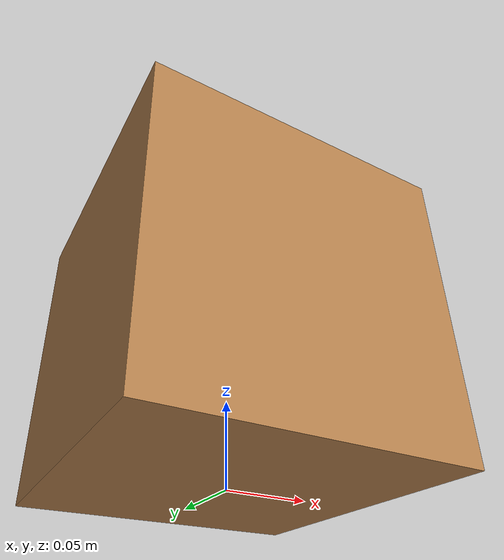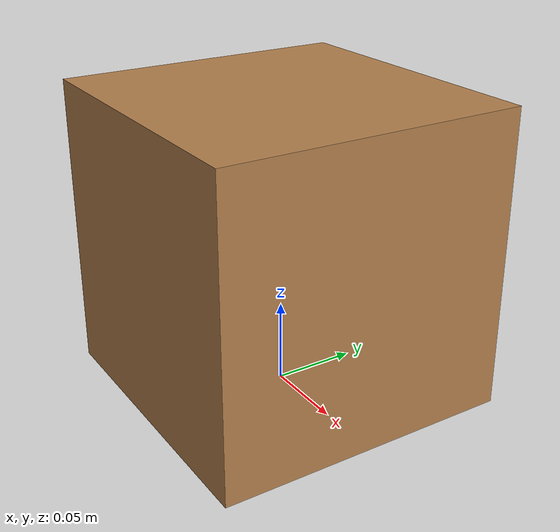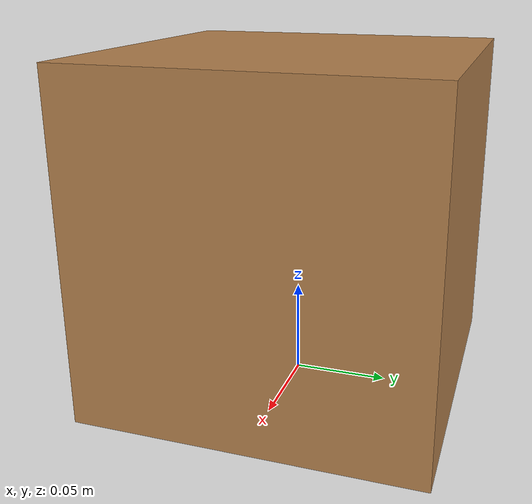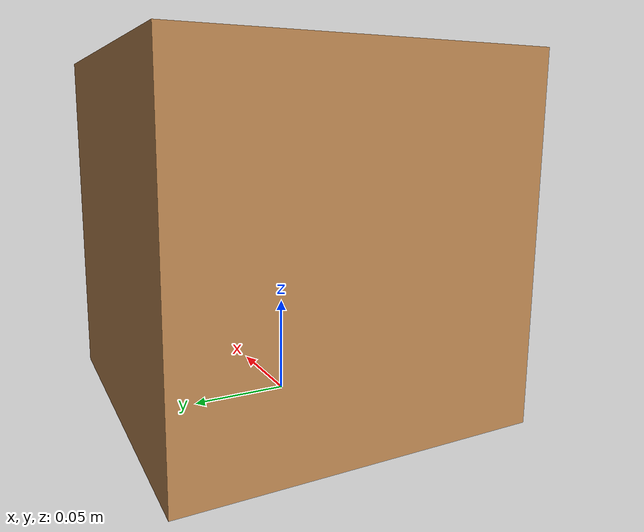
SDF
<?xml version="1.0" ?>
<sdf version="1.5">
  <model name="wood_cube_18cm">
    <link name="link">
      <pose>0 0 0.09 0 0 0</pose>
      <inertial>
        <mass>2.2</mass>
        <inertia>
          <ixx>0.01188</ixx>
          <ixy>0</ixy>
          <ixz>0</ixz>
          <iyy>0.01188</iyy>
          <iyz>0</iyz>
          <izz>0.01188</izz>
        </inertia>
      </inertial>
      <collision name="collision">
        <geometry>
          <box>
            <size>0.18 0.18 0.18</size>
          </box>
        </geometry>
        <surface>
          <contact>
            <ode>
              <kp>100000</kp>
              <kd>100</kd>
              <max_vel>100.0</max_vel>
              <min_depth>0.001</min_depth>
            </ode>
          </contact>
        </surface>
      </collision>
      <visual name="visual">
        <geometry>
          <box>
            <size>0.18 0.18 0.18</size>
          </box>
        </geometry>
        <material>
          <script>
            <uri>file://media/materials/scripts/gazebo.material</uri>
            <name>Gazebo/Wood</name>
          </script>
        </material>
      </visual>
    </link>
  </model>
</sdf>
